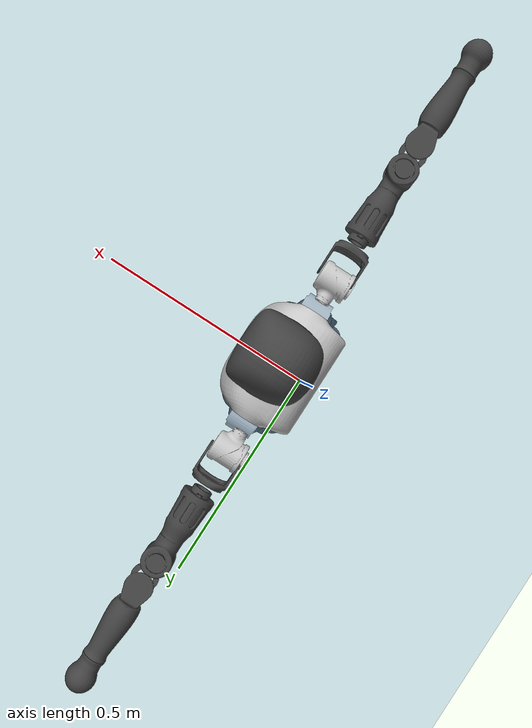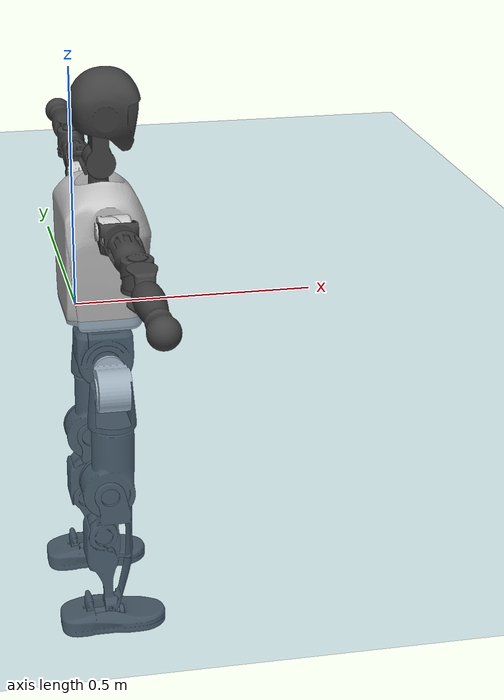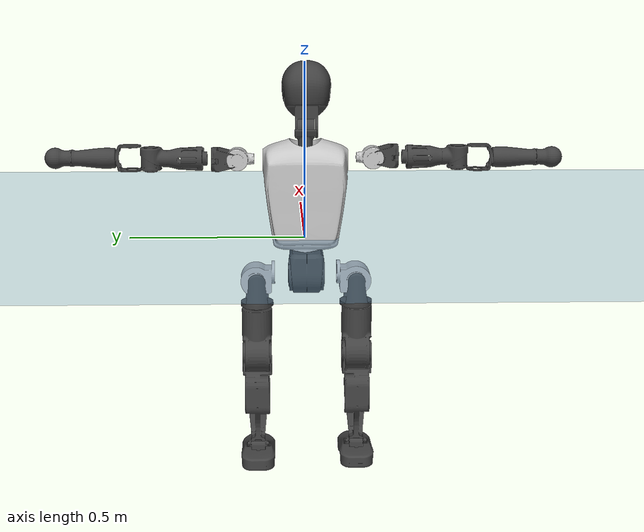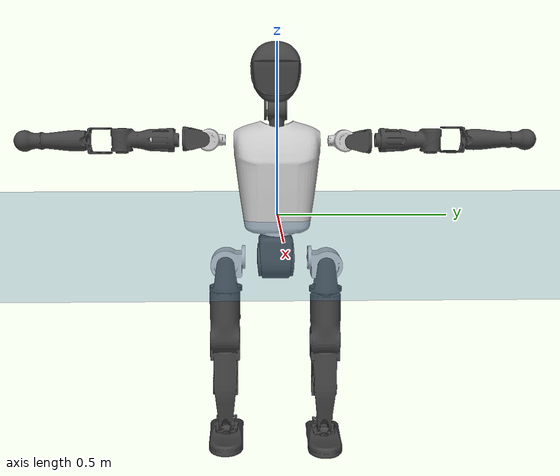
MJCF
<mujoco model="T1">
  <compiler angle="radian" assetdir="assets" balanceinertia="true" inertiafromgeom="false"/>

  <option timestep="0.005" density="1.2" viscosity="2e-05"/>

  <size nkey="1"/>

  <visual>
    <quality shadowsize="8192"/>
    <map shadowclip="0.5"/>
  </visual>

  <default>
    <default class="/">
      <joint armature="0.01" damping="0.01" frictionloss="0.1"/>
      <geom contype="0" conaffinity="0" group="1" solref="-1000 -80"/>
      <site size="0.01 0.005 0.005" group="5"/>
      <general forcelimited="true" biastype="affine" gainprm="25" biasprm="0 -25 -0.6"/>
      <default class="t1">
        <geom rgba="0.25 0.25 0.25 1"/>
        <default class="visual">
          <geom type="mesh" group="2"/>
        </default>
        <default class="collision">
          <geom group="3"/>
        </default>
        <default class="foot">
          <geom size="0.1115 0.05 0.015" type="box" condim="6" group="4" priority="1" solimp="0.015 1 0.015"/>
        </default>
        <default class="reward_collision_sphere">
          <geom group="5" rgba="1 0 0 1"/>
        </default>
      </default>
    </default>
  </default>

  <asset>
    <texture type="skybox" colorspace="auto" name="//unnamed_texture_0" builtin="gradient" rgb1="0.95 0.95 0.95" rgb2="0.95 0.95 0.95" width="100" height="600"/>
    <texture type="2d" colorspace="auto" name="texplane" builtin="checker" rgb1="0.345 0.575 0.748" rgb2="0.345 0.575 0.748" markrgb="1 1 1" width="512" height="512"/>
    <material name="MatPlane" class="/" texture="texplane" texuniform="true" texrepeat="2 2" specular="0.9"/>
    <mesh name="Trunk" class="/" file="Trunk.stl"/>
    <mesh name="H1" class="/" file="H1.stl"/>
    <mesh name="H2" class="/" file="H2.stl"/>
    <mesh name="AL1" class="/" file="AL1.stl"/>
    <mesh name="AL2" class="/" file="AL2.stl"/>
    <mesh name="AL3" class="/" file="AL3.stl"/>
    <mesh name="left_hand_link" class="/" file="left_hand_link.stl"/>
    <mesh name="AR1" class="/" file="AR1.stl"/>
    <mesh name="AR2" class="/" file="AR2.stl"/>
    <mesh name="AR3" class="/" file="AR3.stl"/>
    <mesh name="right_hand_link" class="/" file="right_hand_link.stl"/>
    <mesh name="Waist" class="/" file="Waist.stl"/>
    <mesh name="Hip_Pitch_Left" class="/" file="Hip_Pitch_Left.stl"/>
    <mesh name="Hip_Roll_Left" class="/" file="Hip_Roll_Left.stl"/>
    <mesh name="Hip_Yaw_Left" class="/" file="Hip_Yaw_Left.stl"/>
    <mesh name="Shank_Left" class="/" file="Shank_Left.stl"/>
    <mesh name="Ankle_Cross_Left" class="/" file="Ankle_Cross_Left.stl"/>
    <mesh name="left_foot_link" class="/" file="left_foot_link.stl"/>
    <mesh name="Hip_Pitch_Right" class="/" file="Hip_Pitch_Right.stl"/>
    <mesh name="Hip_Roll_Right" class="/" file="Hip_Roll_Right.stl"/>
    <mesh name="Hip_Yaw_Right" class="/" file="Hip_Yaw_Right.stl"/>
    <mesh name="Shank_Right" class="/" file="Shank_Right.stl"/>
    <mesh name="Ankle_Cross_Right" class="/" file="Ankle_Cross_Right.stl"/>
    <mesh name="right_foot_link" class="/" file="right_foot_link.stl"/>
  </asset>

  <worldbody>
    <geom name="floor" class="/" size="100 100 0.125" type="plane" group="0" material="MatPlane"/>
    <light name="toplight_shadow" class="/" pos="0 0 5" dir="0.0990148 0.0990148 -0.990148" type="directional" ambient="0.04 0.04 0.04" diffuse="0.55 0.55 0.55" specular="0.12 0.12 0.12"/>
    <light name="toplight_fill" class="/" pos="0 0 5" dir="0.0990148 0.0990148 -0.990148" type="directional" castshadow="false" ambient="0.04 0.04 0.04" diffuse="0.3 0.3 0.3" specular="0.08 0.08 0.08"/>
    <body name="trunk" childclass="t1" pos="0.000114381 -0.0027265 -0.00267201" quat="1 -0.000113437 -0.000201011 0.000410859">
      <inertial pos="0.0521097 -0.00210564 0.107237" quat="0.999941 -0.00153794 -0.00670335 0.00844449" mass="15.2122" diaginertia="0.0577367 0.372582 0.0590335"/>
      <joint name="//unnamed_joint_0" type="free" armature="0" damping="0" frictionloss="0"/>
      <geom name="//unnamed_geom_1" class="visual" rgba="0.76 0.76 0.76 1" mesh="Trunk"/>
      <geom name="//unnamed_geom_2" class="collision" size="0.0830961 0.110795 0.166192" pos="0.0551069 0 0.12298" type="box"/>
      <geom name="//unnamed_geom_3" class="reward_collision_sphere" size="0.127414" pos="0.0551069 0 0.102483"/>
      <geom name="//unnamed_geom_4" class="reward_collision_sphere" size="0.0166192" pos="0.0551069 0.117348 0"/>
      <geom name="//unnamed_geom_5" class="reward_collision_sphere" size="0.0166192" pos="0.0551069 -0.117348 0"/>
      <geom name="//unnamed_geom_6" class="reward_collision_sphere" size="0.0166192" pos="0.0551069 0.14772 0.18447"/>
      <geom name="//unnamed_geom_7" class="reward_collision_sphere" size="0.0166192" pos="0.0551069 -0.14772 0.18447"/>
      <site name="imu" pos="-0.0113806 -0.0130442 0.0117775" size="0.0110795"/>
      <camera name="track" pos="0 -2.76113 0" quat="0.707107 0.707107 0 0" mode="trackcom"/>
      <camera name="ego_camera" pos="0.112051 0 0.43043" quat="-0.5 -0.5 0.5 0.5"/>
      <body name="H1" pos="0.0539262 -0.000170402 0.248616" quat="1 -5.25934e-05 -1.09691e-05 -5.22713e-05">
        <inertial pos="-0.000479864 -0.00416727 0.0572506" quat="0.764269 -0.013507 0.00130909 0.644754" mass="0.5997" diaginertia="0.000161111 0.00110697 0.000167221"/>
        <joint name="AAHead_yaw" pos="0 0 0" axis="0.0129752 -0.000791991 0.999916" range="-1.57328 1.58352" armature="0.0113324" damping="0.0176017" frictionloss="0.125236"/>
        <geom name="//unnamed_geom_8" class="visual" mesh="H1"/>
        <body name="H2" pos="0.00128752 -0.00286377 0.0627991" quat="1 0.000117929 0.000146703 -0.000163509">
          <inertial pos="0.00364637 0.00250251 0.0984206" quat="0.988201 0.109801 -0.0716641 -0.07916" mass="0.855211" diaginertia="0.00132952 0.00961758 0.00195929"/>
          <joint name="Head_pitch" pos="0 0 0" axis="-0.00712362 -0.999954 -0.00640245" range="-1.20894 0.345615" armature="0.0113171" damping="0.00892918" frictionloss="0.10058"/>
          <geom name="//unnamed_geom_9" class="visual" mesh="H2"/>
          <geom name="//unnamed_geom_10" class="collision" size="0.0886359" pos="0.00918448 0 0.112732"/>
          <geom name="//unnamed_geom_11" class="reward_collision_sphere" size="0.0997154" pos="0.018369 0 0.102483"/>
        </body>
      </body>
      <body name="AL1" pos="0.0516784 0.146914 0.222208" quat="1 5.50887e-05 0.00060894 0.000178189">
        <inertial pos="-0.000789479 0.0593127 -0.00289248" quat="0.504999 0.497263 -0.499907 0.497794" mass="0.726882" diaginertia="0.000922413 0.00641361 0.000329806"/>
        <joint name="Left_Shoulder_Pitch" pos="0 0 0" axis="0.00204567 0.999998 -0.000722265" range="-3.26223 1.2252" armature="0.0110857" damping="0" frictionloss="0.109334"/>
        <geom name="//unnamed_geom_12" class="visual" rgba="0.76 0.76 0.76 1" mesh="AL1"/>
        <body name="AL2" pos="0.00142873 0.0653203 -0.0017773" quat="1 0.00046568 0.000560789 0.000321038">
          <inertial pos="0.00278743 0.0504871 0.00224945" quat="0.484548 0.521311 -0.486841 0.506393" mass="0.224374" diaginertia="0.000258464 0.00173158 0.000197684"/>
          <joint name="Left_Shoulder_Roll" pos="0 0 0" axis="-1 -3.87865e-05 -4.51678e-05" range="-1.57208 1.73474" armature="0.0125275" damping="0.00949449" frictionloss="0.100147"/>
          <geom name="//unnamed_geom_13" class="visual" mesh="AL2"/>
          <body name="AL3" pos="-0.000124415 0.0812175 0.00273204" quat="1 -0.000300347 1.86735e-05 -0.000298875">
            <inertial pos="0.00110083 0.117409 -0.00228101" quat="0.701236 0.712912 -0.000867893 0.00495584" mass="1.41503" diaginertia="0.00819725 0.0659106 0.000727915"/>
            <joint name="Left_Elbow_Pitch" pos="0 0 0" axis="0.00561292 -0.999921 0.0112133" stiffness="0.00877388" range="-2.24704 2.25069" armature="0.0102073" damping="0.0188013" frictionloss="0.116052"/>
            <geom name="//unnamed_geom_14" class="visual" mesh="AL3"/>
            <geom name="//unnamed_geom_15" class="collision" size="0.0332385 0.0830961" pos="0 0.0690281 0" quat="0.707105 0.707108 0 0" type="cylinder"/>
            <geom name="//unnamed_geom_16" class="reward_collision_sphere" size="0.0398861"/>
            <body name="left_hand_link" pos="0.0027757 0.202363 0.00163192" quat="1 0.000302544 -0.000528456 -0.000319427">
              <inertial pos="-0.000333486 0.150507 0.000423659" quat="0.713534 0.700551 -0.00746272 -0.00639275" mass="0.451923" diaginertia="0.00528858 0.0411429 0.000239498"/>
              <joint name="Left_Elbow_Yaw" pos="0 0 0" axis="-0.0043118 0.00924184 0.999948" range="-2.42526 0.0105028" armature="0.0109818" damping="0.0206624" frictionloss="0.115033"/>
              <geom name="//unnamed_geom_17" class="visual" mesh="left_hand_link"/>
              <geom name="//unnamed_geom_18" class="collision" size="0.0332385 0.0969455" pos="0 0.179473 0" quat="0.707105 0.707108 0 0" type="cylinder"/>
              <geom name="//unnamed_geom_19" class="reward_collision_sphere" size="0.0553974"/>
              <geom name="//unnamed_geom_20" class="reward_collision_sphere" size="0.0387782" pos="0 0.151862 0"/>
              <geom name="//unnamed_geom_21" class="reward_collision_sphere" size="0.0387782" pos="0 0.296821 0"/>
            </body>
          </body>
        </body>
      </body>
      <body name="AR1" pos="0.0559831 -0.146121 0.225051" quat="1 -0.000819653 0.000332958 0.000221235">
        <inertial pos="-0.00288953 -0.0624968 0.000956703" quat="0.505793 0.491909 -0.506672 0.495462" mass="0.746723" diaginertia="0.000924001 0.00692541 0.000348788"/>
        <joint name="Right_Shoulder_Pitch" pos="0 0 0" axis="-0.00828943 -0.999966 -0.000138696" stiffness="0.00108335" range="-1.22577 3.32981" armature="0.0114372" damping="0.0106545" frictionloss="0.118952"/>
        <geom name="//unnamed_geom_22" class="visual" rgba="0.76 0.76 0.76 1" mesh="AR1"/>
        <body name="AR2" pos="0.00171248 -0.0636484 0.00282116" quat="1 0.000113922 -5.56903e-05 -0.000595571">
          <inertial pos="0.00115387 -0.0501577 0.00207054" quat="0.515141 0.487418 -0.508251 0.488605" mass="0.225231" diaginertia="0.000278368 0.0018136 0.000211438"/>
          <joint name="Right_Shoulder_Roll" pos="0 0 0" axis="-0.999999 -0.00150651 0.000478571" range="-1.72843 1.58812" armature="0.0111333" damping="0.017999" frictionloss="0.123913"/>
          <geom name="//unnamed_geom_23" class="visual" mesh="AR2"/>
          <body name="AR3" pos="0.00325294 -0.0810838 -0.00288843" quat="0.999999 0.000837689 -0.000731406 0.000141731">
            <inertial pos="0.00239161 -0.118137 -0.00206896" quat="0.703707 0.710452 0.000967643 0.00731649" mass="1.4328" diaginertia="0.00861502 0.067436 0.000697"/>
            <joint name="Right_Elbow_Pitch" pos="0 0 0" axis="-0.00660689 0.99991 -0.0117179" range="-2.29097 2.31917" armature="0.0108092" damping="0.0127868" frictionloss="0.120602"/>
            <geom name="//unnamed_geom_24" class="visual" mesh="AR3"/>
            <geom name="//unnamed_geom_25" class="collision" size="0.0332385 0.0830961" pos="0 -0.0690281 0" quat="0.707105 0.707108 0 0" type="cylinder"/>
            <geom name="//unnamed_geom_26" class="reward_collision_sphere" size="0.0398861"/>
            <body name="right_hand_link" pos="-0.000218741 -0.202413 -0.00202352" quat="1 0.000703315 -0.00023852 0.000547229">
              <inertial pos="-0.000556484 -0.149715 0.00330552" quat="0.713122 0.701034 -0.00145243 0.00239181" mass="0.443755" diaginertia="0.00562078 0.0430384 0.000241956"/>
              <joint name="Right_Elbow_Yaw" pos="0 0 0" axis="0.000960242 -0.000894419 0.999999" range="0.0334837 2.45897" armature="0.0110804" damping="0.0100668" frictionloss="0.104494"/>
              <geom name="//unnamed_geom_27" class="visual" mesh="right_hand_link"/>
              <geom name="//unnamed_geom_28" class="collision" size="0.0332385 0.0969455" pos="0 -0.179473 0" quat="0.707105 0.707108 0 0" type="cylinder"/>
              <geom name="//unnamed_geom_29" class="reward_collision_sphere" size="0.0553974"/>
              <geom name="//unnamed_geom_30" class="reward_collision_sphere" size="0.0387782" pos="0 -0.151862 0"/>
              <geom name="//unnamed_geom_31" class="reward_collision_sphere" size="0.0387782" pos="0 -0.296821 0"/>
            </body>
          </body>
        </body>
      </body>
      <body name="Waist" pos="0.0552674 -0.00324462 -0.115924" quat="0.999999 -0.00105852 -0.000651485 -0.000457262">
        <inertial pos="0.0048789 0.00173243 0.00933022" quat="0.984148 -4.29111e-06 -0.177323 0.00285926" mass="3.3659" diaginertia="0.00349782 0.0260339 0.00539031"/>
        <joint name="Waist" pos="0 0 0" axis="0.005911 -0.0128673 0.9999" range="-1.61648 1.55716" armature="0.0118469" damping="0.0222215" frictionloss="0.113099"/>
        <geom name="//unnamed_geom_32" class="visual" mesh="Waist"/>
        <body name="Hip_Pitch_Left" pos="0.00170416 0.148166 0.00123525" quat="0.999999 -0.000984307 0.00036777 0.000145249">
          <inertial pos="0.000638943 -0.00946361 -0.0170871" quat="0.973316 0.229235 0.00953173 -0.00412342" mass="1.35551" diaginertia="0.00117465 0.00740457 0.00139867"/>
          <joint name="Left_Hip_Pitch" pos="0 0 0" axis="-0.00317952 0.999991 -0.00267671" stiffness="0.009026" range="-1.81124 1.55165" armature="0.0103291" damping="0.0229681" frictionloss="0.125853"/>
          <geom name="//unnamed_geom_33" class="visual" rgba="0.76 0.76 0.76 1" mesh="Hip_Pitch_Left"/>
          <body name="Hip_Roll_Left" pos="-0.00123634 -0.00280042 -0.0217005" quat="1 0.000237982 1.76712e-06 -1.44703e-05">
            <inertial pos="-0.00154912 -0.000601135 -0.0523481" quat="0.703312 -0.00856731 -0.0114299 0.710738" mass="0.551134" diaginertia="0.00117018 0.00810901 0.000602094"/>
            <joint name="Left_Hip_Roll" pos="0 0 0" axis="-1 0.00010404 0.000117427" range="-1.57204 0.239524" armature="0.0106492" damping="0" frictionloss="0.0980977"/>
            <geom name="//unnamed_geom_34" class="visual" mesh="Hip_Roll_Left"/>
            <geom name="//unnamed_geom_35" class="reward_collision_sphere" size="0.0609372"/>
            <body name="Hip_Yaw_Left" pos="-0.00180704 0.00100299 -0.0871231" quat="1 0.000530232 -0.000407199 -0.000182779">
              <inertial pos="-0.00659 0.00254214 -0.0933094" quat="0.694369 -0.0335684 -0.0332268 0.718067" mass="2.88959" diaginertia="0.0170281 0.13042 0.00297086"/>
              <joint name="Left_Hip_Yaw" pos="0 0 0" axis="-0.00186134 0.00371828 -0.999991" range="-1.05215 0.996315" armature="0.0106112" damping="0" frictionloss="0.1126"/>
              <geom name="//unnamed_geom_36" class="visual" mesh="Hip_Yaw_Left"/>
              <geom name="//unnamed_geom_37" class="collision" size="0.0553974 0.0886359" type="cylinder"/>
              <body name="Shank_Left" pos="-0.0148828 0.0003436 -0.133038" quat="1 7.99285e-05 -0.00017297 0.000311451">
                <inertial pos="-0.00740028 0.000502927 -0.12781" quat="0.997503 0.00116133 -0.0248989 0.0660829" mass="2.45124" diaginertia="0.0229399 0.173103 0.00218291"/>
                <joint name="Left_Knee_Pitch" pos="0 0 0" axis="-0.00559774 0.999913 0.0119203" stiffness="0.00697388" range="0.0496083 2.28561" armature="0.0109793" damping="0.012805" frictionloss="0.099059"/>
                <geom name="//unnamed_geom_38" class="visual" mesh="Shank_Left"/>
                <geom name="//unnamed_geom_39" class="collision" size="0.0553974 0.0830961" pos="0 0 -0.12298" type="cylinder"/>
                <geom name="//unnamed_geom_40" class="reward_collision_sphere" size="0.0720166"/>
                <body name="Ankle_Cross_Left" pos="0.0024475 0.000748177 -0.287711" quat="1 8.90358e-05 -0.000413206 -0.000115471">
                  <inertial pos="-0.00592499 0.00127341 -0.00584184" quat="0.440034 0.550943 0.55035 0.447153" mass="0.0995278" diaginertia="1.88729e-05 0.000124763 1.27482e-05"/>
                  <joint name="Left_Ankle_Pitch" pos="0 0 0" axis="3.09439e-06 1 0.000195461" range="-0.888034 0.381489" armature="0.0098366" damping="0" frictionloss="0.125004"/>
                  <geom name="//unnamed_geom_41" class="visual" mesh="Ankle_Cross_Left"/>
                  <body name="left_foot_link" pos="-0.00418445 -0.00144531 -0.0142416" quat="0.999999 -0.000443731 3.2081e-05 -0.00117482">
                    <inertial pos="-0.00125416 -0.000286975 -0.00975171" quat="0.000178323 0.62243 -0.012788 0.782571" mass="0.92965" diaginertia="0.00177648 0.0123086 0.00239911"/>
                    <joint name="Left_Ankle_Roll" pos="0 0 0" axis="-0.999984 -0.00568123 0.000774747" range="-0.437076 0.437387" armature="0.0112752" damping="0" frictionloss="0.109215"/>
                    <geom name="//unnamed_geom_42" class="visual" mesh="left_foot_link"/>
                    <geom name="left_foot" class="foot" size="0.120887 0.0467401 0.016296" pos="0.00918448 0 -0.0153725"/>
                    <geom name="//unnamed_geom_44" class="reward_collision_sphere" size="0.0576133" pos="0.00918448 0 -0.0153725"/>
                    <geom name="//unnamed_geom_45" class="reward_collision_sphere" size="0.0332385" pos="0.0872526 -0.0317529 -0.0153725"/>
                    <geom name="//unnamed_geom_46" class="reward_collision_sphere" size="0.0332385" pos="-0.0642914 -0.0317529 -0.0153725"/>
                    <site name="left_foot" class="foot" pos="0.00918448 0 -0.0153725" size="0.0110795"/>
                  </body>
                </body>
              </body>
            </body>
          </body>
        </body>
        <body name="Hip_Pitch_Right" pos="-0.000533428 -0.143826 0.00267943" quat="1 4.24986e-06 0.000290468 -0.000235319">
          <inertial pos="-0.000227222 0.00775832 -0.0185566" quat="0.974647 -0.223232 0.0134102 0.00716498" mass="1.41133" diaginertia="0.00119976 0.00725131 0.00148489"/>
          <joint name="Right_Hip_Pitch" pos="0 0 0" axis="0.00317741 -0.999974 -0.00650476" stiffness="0.00828446" range="-1.57492 1.83859" armature="0.0101393" damping="0.0128042" frictionloss="0.111403"/>
          <geom name="//unnamed_geom_47" class="visual" rgba="0.76 0.76 0.76 1" mesh="Hip_Pitch_Right"/>
          <body name="Hip_Roll_Right" pos="-0.00161951 -0.00123176 -0.0205261" quat="0.999999 -0.00013456 0.000954611 0.000956456">
            <inertial pos="0.000870421 0.00270223 -0.0531255" quat="0.710189 0.000587953 -0.0044512 0.703996" mass="0.504987" diaginertia="0.00113421 0.00759983 0.000580606"/>
            <joint name="Right_Hip_Roll" pos="0 0 0" axis="-1 7.36577e-05 0.00036168" stiffness="0.00127949" range="-0.24897 1.52058" armature="0.0112848" damping="0.0112471" frictionloss="0.124268"/>
            <geom name="//unnamed_geom_48" class="visual" mesh="Hip_Roll_Right"/>
            <geom name="//unnamed_geom_49" class="reward_collision_sphere" size="0.0609372"/>
            <body name="Hip_Yaw_Right" pos="-0.00179195 -0.00248358 -0.082325" quat="1 -0.000306518 0.000175837 4.44269e-05">
              <inertial pos="-0.00754878 -0.00250342 -0.0903742" quat="0.706955 -0.0302323 -0.0419973 0.705363" mass="3.11431" diaginertia="0.0172162 0.134489 0.00294094"/>
              <joint name="Right_Hip_Yaw" pos="0 0 0" axis="0.0129184 -0.00217053 -0.999914" range="-0.982574 1.04652" armature="0.0110636" damping="0.0217069" frictionloss="0.109753"/>
              <geom name="//unnamed_geom_50" class="visual" mesh="Hip_Yaw_Right"/>
              <geom name="//unnamed_geom_51" class="collision" size="0.0553974 0.0886359" type="cylinder"/>
              <body name="Shank_Right" pos="-0.0133443 -0.000328855 -0.137728" quat="0.999999 0.000956614 3.42837e-05 0.000496954">
                <inertial pos="-0.00626103 -0.00105198 -0.12651" quat="0.999258 -0.00233165 -0.0243747 -0.0297151" mass="2.37497" diaginertia="0.0216373 0.165305 0.00217681"/>
                <joint name="Right_Knee_Pitch" pos="0 0 0" axis="0.000643892 -0.999996 -0.00270724" stiffness="0.00532617" range="-2.35689 0.0457194" armature="0.0102412" damping="0.0169407" frictionloss="0.108531"/>
                <geom name="//unnamed_geom_52" class="visual" mesh="Shank_Right"/>
                <geom name="//unnamed_geom_53" class="collision" size="0.0553974 0.0830961" pos="0 0 -0.12298" type="cylinder"/>
                <geom name="//unnamed_geom_54" class="reward_collision_sphere" size="0.0720166"/>
                <body name="Ankle_Cross_Right" pos="-0.00152562 0.00206914 -0.284254" quat="1 0.000316895 0.000108535 -2.52901e-05">
                  <inertial pos="-0.00269209 -0.00172403 -0.00818247" quat="0.447483 0.54606 0.559268 0.434508" mass="0.105215" diaginertia="1.89425e-05 0.000129051 1.36128e-05"/>
                  <joint name="Right_Ankle_Pitch" pos="0 0 0" axis="0.00498327 -0.999936 0.0101787" stiffness="0.00201746" range="-0.351486 0.872358" armature="0.0109592" damping="0.0138678" frictionloss="0.0994219"/>
                  <geom name="//unnamed_geom_55" class="visual" mesh="Ankle_Cross_Right"/>
                  <body name="right_foot_link" pos="-0.000802945 -0.000213149 -0.0132409" quat="1 7.87561e-05 2.41429e-05 9.37472e-05">
                    <inertial pos="0.00167797 -0.00215353 -0.00891748" quat="0.000429794 0.621084 0.000449483 0.783743" mass="0.92647" diaginertia="0.00174556 0.0116942 0.0024455"/>
                    <joint name="Right_Ankle_Roll" pos="0 0 0" axis="-0.999974 -0.00607474 0.00400489" range="-0.412953 0.437756" armature="0.0113362" damping="0.0135602" frictionloss="0.116994"/>
                    <geom name="//unnamed_geom_56" class="visual" mesh="right_foot_link"/>
                    <geom name="right_foot" class="foot" size="0.102308 0.0473803 0.0149695" pos="0.00918448 0 -0.0153725"/>
                    <geom name="//unnamed_geom_58" class="reward_collision_sphere" size="0.0443179"/>
                    <geom name="//unnamed_geom_59" class="reward_collision_sphere" size="0.0332385" pos="0.00918448 0 -0.0153725"/>
                    <geom name="//unnamed_geom_60" class="reward_collision_sphere" size="0.0332385" pos="0.0872526 0.0317529 -0.0153725"/>
                    <geom name="//unnamed_geom_61" class="reward_collision_sphere" size="0.0332385" pos="-0.0642914 0.0317529 -0.0153725"/>
                    <site name="right_foot" class="foot" pos="0.00918448 0 -0.0153725" size="0.0110795"/>
                  </body>
                </body>
              </body>
            </body>
          </body>
        </body>
      </body>
    </body>
  </worldbody>

  <contact>
    <pair class="/" geom1="floor" geom2="left_foot" name="//unnamed_contact_0"/>
    <pair class="/" geom1="floor" geom2="right_foot" name="//unnamed_contact_1"/>
  </contact>

  <actuator>
    <general name="AAHead_yaw" class="/" joint="AAHead_yaw" forcerange="-8.50077 8.50077" gainprm="26.7591" biasprm="0 -26.7591 -0.62058"/>
    <general name="Head_pitch" class="/" joint="Head_pitch" forcerange="-7.74571 7.74571" gainprm="26.7591" biasprm="0 -26.7591 -0.62058"/>
    <general name="Left_Shoulder_Pitch" class="/" joint="Left_Shoulder_Pitch" forcerange="-18.1291 18.1291" gainprm="26.7591" biasprm="0 -26.7591 -0.62058"/>
    <general name="Left_Shoulder_Roll" class="/" joint="Left_Shoulder_Roll" forcerange="-17.8076 17.8076" gainprm="26.7591" biasprm="0 -26.7591 -0.62058"/>
    <general name="Left_Elbow_Pitch" class="/" joint="Left_Elbow_Pitch" forcerange="-20.4442 20.4442" gainprm="26.7591" biasprm="0 -26.7591 -0.62058"/>
    <general name="Left_Elbow_Yaw" class="/" joint="Left_Elbow_Yaw" forcerange="-18.1175 18.1175" gainprm="26.7591" biasprm="0 -26.7591 -0.62058"/>
    <general name="Right_Shoulder_Pitch" class="/" joint="Right_Shoulder_Pitch" forcerange="-22.2553 22.2553" gainprm="26.7591" biasprm="0 -26.7591 -0.62058"/>
    <general name="Right_Shoulder_Roll" class="/" joint="Right_Shoulder_Roll" forcerange="-18.1738 18.1738" gainprm="26.7591" biasprm="0 -26.7591 -0.62058"/>
    <general name="Right_Elbow_Pitch" class="/" joint="Right_Elbow_Pitch" forcerange="-19.2188 19.2188" gainprm="26.7591" biasprm="0 -26.7591 -0.62058"/>
    <general name="Right_Elbow_Yaw" class="/" joint="Right_Elbow_Yaw" forcerange="-21.8707 21.8707" gainprm="26.7591" biasprm="0 -26.7591 -0.62058"/>
    <general name="Waist" class="/" joint="Waist" forcerange="-37.0407 37.0407" gainprm="26.7591" biasprm="0 -26.7591 -0.62058"/>
    <general name="Left_Hip_Pitch" class="/" joint="Left_Hip_Pitch" forcerange="-48.0656 48.0656" gainprm="26.7591" biasprm="0 -26.7591 -0.62058"/>
    <general name="Left_Hip_Roll" class="/" joint="Left_Hip_Roll" forcerange="-34.4474 34.4474" gainprm="26.7591" biasprm="0 -26.7591 -0.62058"/>
    <general name="Left_Hip_Yaw" class="/" joint="Left_Hip_Yaw" forcerange="-32.6522 32.6522" gainprm="26.7591" biasprm="0 -26.7591 -0.62058"/>
    <general name="Left_Knee_Pitch" class="/" joint="Left_Knee_Pitch" forcerange="-68.5136 68.5136" gainprm="26.7591" biasprm="0 -26.7591 -0.62058"/>
    <general name="Left_Ankle_Pitch" class="/" joint="Left_Ankle_Pitch" forcerange="-22.8132 22.8132" gainprm="26.7591" biasprm="0 -26.7591 -0.62058"/>
    <general name="Left_Ankle_Roll" class="/" joint="Left_Ankle_Roll" forcerange="-16.5347 16.5347" gainprm="26.7591" biasprm="0 -26.7591 -0.62058"/>
    <general name="Right_Hip_Pitch" class="/" joint="Right_Hip_Pitch" forcerange="-49.7513 49.7513" gainprm="26.7591" biasprm="0 -26.7591 -0.62058"/>
    <general name="Right_Hip_Roll" class="/" joint="Right_Hip_Roll" forcerange="-32.0829 32.0829" gainprm="26.7591" biasprm="0 -26.7591 -0.62058"/>
    <general name="Right_Hip_Yaw" class="/" joint="Right_Hip_Yaw" forcerange="-31.542 31.542" gainprm="26.7591" biasprm="0 -26.7591 -0.62058"/>
    <general name="Right_Knee_Pitch" class="/" joint="Right_Knee_Pitch" forcerange="-65.9637 65.9637" gainprm="26.7591" biasprm="0 -26.7591 -0.62058"/>
    <general name="Right_Ankle_Pitch" class="/" joint="Right_Ankle_Pitch" forcerange="-20.6917 20.6917" gainprm="26.7591" biasprm="0 -26.7591 -0.62058"/>
    <general name="Right_Ankle_Roll" class="/" joint="Right_Ankle_Roll" forcerange="-15.286 15.286" gainprm="26.7591" biasprm="0 -26.7591 -0.62058"/>
  </actuator>

  <sensor>
    <gyro site="imu" name="imu_angular_velocity"/>
    <velocimeter site="imu" name="imu_linear_velocity"/>
    <framelinvel objtype="site" objname="left_foot" name="left_foot_global_linear_velocity"/>
    <framelinvel objtype="site" objname="right_foot" name="right_foot_global_linear_velocity"/>
  </sensor>

  <keyframe>
    <key name="home" qpos="0 0 0.6385 1 0 0 0 0 0 0 1.4 0 -0.4 0 -1.4 0 0.4 0 -0.4 0 0 0.8 -0.4 0 0.4 0 0 -0.8 0.4 0"/>
  </keyframe>
</mujoco>
